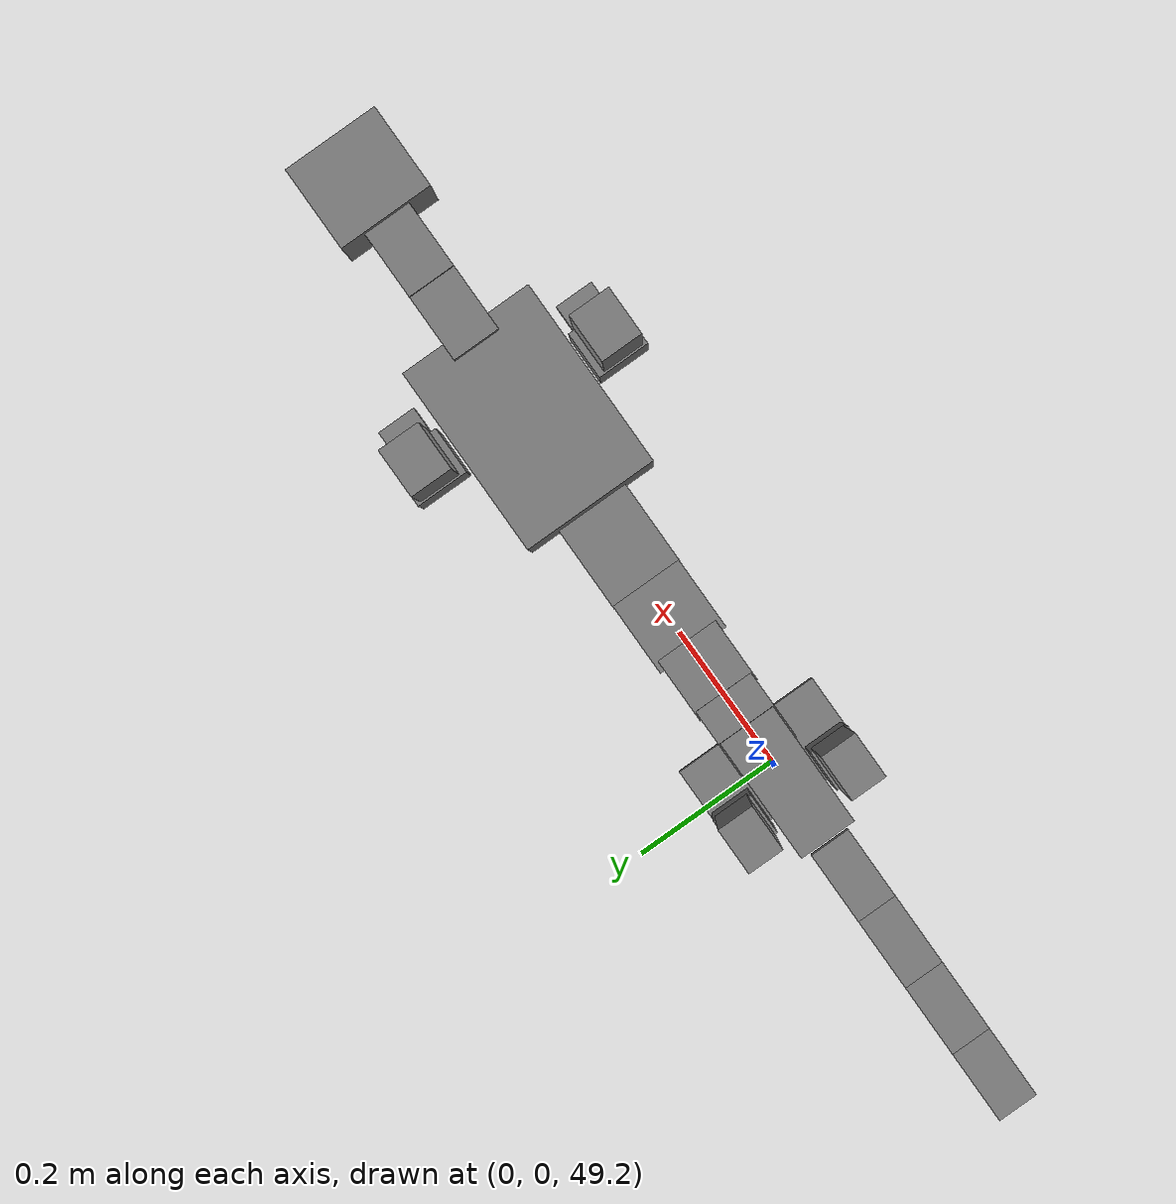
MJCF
<mujoco model="dog">

    <default>
        <joint armature="0.02" stiffness="1" damping="0.2" limited="true"/>
        <geom condim="3" friction="1 0.05 0.05" margin="0.01"/>
        <motor ctrllimited="true" ctrlrange="-1.0 1.0" forcelimited="true" gear="50"/>
    </default>

    <compiler inertiafromgeom="true" angle="radian"/>

    <option timestep="0.016" iterations="50" tolerance="1e-10" solver="Newton" jacobian="dense" cone="pyramidal"/>

    <size nconmax="20000" njmax="60000" nstack="5000000"/>
    <visual>
        <map force="0.1" zfar="30"/>
        <rgba haze="0.15 0.25 0.35 1"/>
        <quality shadowsize="2048"/>
        <global offwidth="800" offheight="800"/>
    </visual>

    <asset>
        <texture type="skybox" builtin="gradient" rgb1="0.3 0.5 0.7" rgb2="0 0 0" width="512" height="512"/>
        <texture name="texplane" type="2d" builtin="checker" rgb1=".2 .3 .4" rgb2=".1 0.15 0.2" width="512" height="512"
                 mark="cross" markrgb=".8 .8 .8"/>
        <texture name="texgeom" type="cube" builtin="flat" mark="cross" width="127" height="1278" rgb1="0.8 0.6 0.4"
                 rgb2="0.8 0.6 0.4" markrgb="1 1 1" random="0.01"/>

        <material name="matplane" reflectance="0.3" texture="texplane" texrepeat="1 1" texuniform="true"/>
        <material name="matgeom" texture="texgeom" texuniform="true" rgba="0.8 0.6 .4 1"/>
    </asset>

    <worldbody>
        <geom name="floor" pos="0 0 0" size="0 0 .25" type="plane" material="matplane" condim="3"/>

        <light directional="false" diffuse=".2 .2 .2" specular="0 0 0" pos="0 0 5" dir="0 0 -1" castshadow="false"/>
        <light mode="targetbodycom" target="torso" directional="false" diffuse=".8 .8 .8" specular="0.3 0.3 0.3"
               pos="0 0 4.0" dir="0 0 -1"/>

        <body name="root" pos="0 0 50">
            <freejoint name="root_1"/>
            <geom type="box" pos="0 0 -0.02" size="0.0774  0.0358  0.063" density="2030"/>

            <body name="spine1" pos="0.054 0 0">
                <joint name="spine1_y" axis="0 1 0" range="0 0.7" limited="true"/>
                <geom type="box" pos="0.02375 0 -0.03" size="0.04375  0.0375  0.05985" density="2030"/>

                <body name="spine2" pos="0.0612 0 0">
                    <joint name="spine2_y" axis="0 1 0" range="-0.15 0.15" limited="true"/>
                    <geom type="box" pos="0.03555  0  -0.04" size="0.04055  0.039  0.06615" density="2030"/>

                    <body name="spine3" pos="0.0730 0 0">
                        <joint name="spine3_y" axis="0 1 0" range="-0.15 0.15" limited="true"/>
                        <geom type="box" pos="0.03555  0  -0.057" size="0.04555  0.0445  0.081" density="2030"/>

                        <body name="spine4" pos="0.0780 0 0">
                            <joint name="spine4_y" axis="0 1 0" range="-0.15 0.15" limited="true"/>
                            <geom type="box" pos="0.05265  0  -0.07" size="0.05265  0.045  0.09135" density="2030"/>

                            <body name="torso" pos="0.1082 0 0">
                                <joint name="torso_y" axis="0 1 0" range="-0.15 0.15" limited="true"/>
                                <geom type="box" pos="0.11925  0  -0.085" size="0.11925  0.085  0.11745"
                                      density="2030"/>

                                <body name="neck1" pos="0.2160  0   0.0180">
                                    <joint name="neck1_y" axis="0 1 0" range="-1.2  -1" limited="true"/>
                                    <geom type="box" pos="0.0423  0  0" size="0.0423  0.03  0.036" density="2325"/>

                                    <body name="neck2" pos="0.0853  0  0">
                                        <joint name="neck2_y" axis="0 1 0" range="0.1  0" limited="true"/>
                                        <geom type="box" pos="0.0423  0  0" size="0.0423  0.03  0.036" density="2325"/>

                                        <body name="head" pos="0.0853  0  0">
                                            <joint name="head_y" axis="0 1 0" range="-0.3  -0.2" limited="true"/>
                                            <geom type="box" pos="0.0531  0  -0.055" size="0.0531  0.06  0.1044"
                                                  density="4030"/>

                                        </body>
                                    </body>
                                </body>

                                <body name="front_shoulder" pos="0.156  0   -0.0480">
                                    <joint name="front_shoulder_y" axis="0 1 0" range="-1 1.5" limited="true"/>
                                    <geom type="box" pos="0 0.13 -0.0922" size="0.0319  0.0273  0.1188" density="1158"/>
                                    <geom type="box" pos="0 -0.13 -0.0922" size="0.0319  0.0273  0.1188"
                                          density="1158"/>

                                    <body name="front_elbow" pos="0  0  -0.1843">
                                        <joint name="front_elbow_y" axis="0 1 0" range="-2 0" limited="true"/>
                                        <geom type="box" pos="0 0.13 -0.0547" size="0.0162  0.0166  0.0547"
                                              density="1081"/>
                                        <geom type="box" pos="0 -0.13 -0.0547" size="0.0162  0.0166  0.0547"
                                              density="1081"/>

                                        <body name="front_wrist" pos="0  0  -0.1094">
                                            <joint name="front_wrist_y" axis="0 1 0" range="-0.2 0" limited="true"/>
                                            <geom type="box" pos="0 0.13 -0.0649" size="0.0314  0.0348  0.0781"
                                                  density="1664"/>
                                            <geom type="box" pos="0 -0.13 -0.0649" size="0.0314  0.0348  0.0781"
                                                  density="1664"/>

                                            <body name="front_finger_end" pos="0  0  -0.1298">
                                                <joint name="front_finger_y" axis="0 1 0" range="-0.4 1"
                                                       limited="true"/>
                                                <geom type="box" pos="0.0258  0.13  -0.0028"
                                                      size="0.0474  0.0258  0.0178" density="1515"/>
                                                <geom type="box" pos="0.0258  -0.13  -0.0028"
                                                      size="0.0474  0.0258  0.0178" density="1515"/>

                                            </body>

                                        </body>
                                    </body>
                                </body>

                            </body>
                        </body>
                    </body>
                </body>
            </body>

            <body name="back_hip" pos="-0.03 0 -0.018">
                <joint name="back_hip_y" axis="0 1 0" range="-1.5 0.3" limited="true"/>
                <geom type="box" pos="0 0.07 -0.1787" size="0.0298  0.0233  0.2015" density="1154"/>
                <geom type="box" pos="0 -0.07 -0.1787" size="0.0298  0.0233  0.2015" density="1154"/>

                <body name="back_knee" pos="0  0  -0.3573">
                    <joint name="back_knee_y" axis="0 1 0" range="0 2.8" limited="true"/>
                    <geom type="box" pos="0 0.07 -0.1124" size="0.0274  0.0270  0.1280" density="1227"/>
                    <geom type="box" pos="0 -0.07 -0.1124" size="0.0274  0.0270  0.1280" density="1227"/>

                    <body name="back_ankle" pos="0  0  -0.2248">
                        <joint name="back_ankle_y" axis="0 1 0" range="-2.2 0" limited="true"/>
                        <geom type="box" pos="0 0.07 -0.0679" size="0.0164  0.0164  0.0792" density="1284"/>
                        <geom type="box" pos="0 -0.07 -0.0679" size="0.0164  0.0164  0.0792" density="1284"/>

                        <body name="back_toe_end" pos="0  0  -0.1358">
                            <joint name="back_toe_y" axis="0 1 0" range="-0.4 1" limited="true"/>
                            <geom type="box" pos="0.0312  0.07  -0.0144" size="0.0571  0.0312  0.0294" density="1515"/>
                            <geom type="box" pos="0.0312  -0.07  -0.0144" size="0.0571  0.0312  0.0294" density="1515"/>

                        </body>
                    </body>
                </body>
            </body>

            <body name="tail1" pos="-0.074 0 -0.006">
                <joint name="tail1_y" axis="0 1 0" range="-0.2 0.2" limited="true"/>
                <geom type="box" pos="-0.0536  0  0" size="0.045  0.025  0.0175" density="1587"/>

                <body name="tail2" pos="-0.09 0 0">
                    <joint name="tail2_y" axis="0 1 0" range="-0.2 0.2" limited="true"/>
                    <geom type="box" pos="-0.0536  0  0" size="0.045  0.025  0.0175" density="1587"/>

                    <body name="tail3" pos="-0.09 0 0">
                        <joint name="tail3_y" axis="0 1 0" range="-0.2 0.2" limited="true"/>
                        <geom type="box" pos="-0.0536  0  0" size="0.045  0.025  0.0175" density="1587"/>

                        <body name="tail4" pos="-0.09 0 0">
                            <joint name="tail4_y" axis="0 1 0" range="-0.2 0.2" limited="true"/>
                            <geom type="box" pos="-0.0536  0  0" size="0.045  0.025  0.0175" density="1587"/>

                        </body>
                    </body>
                </body>
            </body>
        </body>
    </worldbody>

    <actuator>
        <motor joint="spine1_y" forcerange="-150 150     "/>
        <motor joint="spine2_y" forcerange="-150 150     "/>
        <motor joint="spine3_y" forcerange="-150 150     "/>
        <motor joint="spine4_y" forcerange="-150 150     "/>
        <motor joint="torso_y" forcerange="-150 150     "/>
        <motor joint="neck1_y" forcerange="-100 100       "/>
        <motor joint="neck2_y" forcerange="-100 100       "/>
        <motor joint="head_y" forcerange="-150 150       "/>
        <motor joint="front_shoulder_y" forcerange="-177.18 104.56"/>
        <motor joint="front_elbow_y" forcerange="-119.90 100.63"/>
        <motor joint="front_wrist_y" forcerange="-139.14 139.60"/>
        <motor joint="front_finger_y" forcerange="-73.91 23.96"/>
        <motor joint="back_hip_y" forcerange="-220.00 291.21"/>
        <motor joint="back_knee_y" forcerange="-365.92 226.77"/>
        <motor joint="back_angle_y" forcerange="-89.27 72.80"/>
        <motor joint="back_toe_y" forcerange="-75.71 93.52"/>
        <motor joint="tail1_y" forcerange="-50 50     "/>
        <motor joint="tail2_y" forcerange="-50 50     "/>
        <motor joint="tail3_y" forcerange="-50 50     "/>
        <motor joint="tail4_y" forcerange="-50 50     "/>
    </actuator>
</mujoco>
